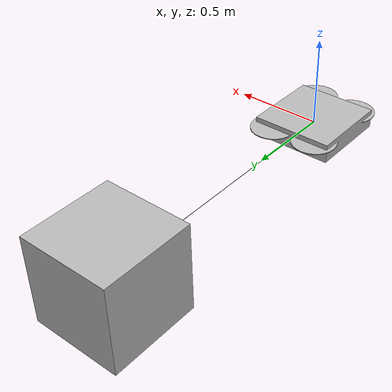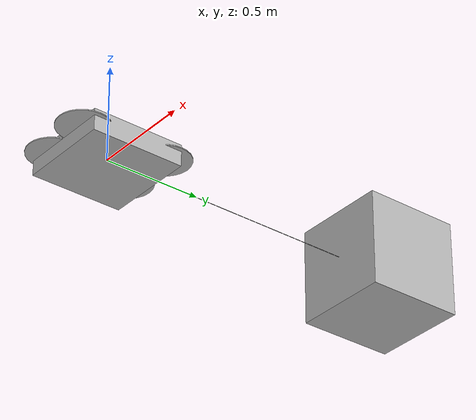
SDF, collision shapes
<!-- DO NOT EDIT: Generated from iris.sdf.jinja -->
<sdf version='1.6'>
  <model name='single_iris_payload'>

    <!-- Basic Iris Model -->
    <include>
      <uri>model://iris</uri>
    </include>

    <!-- Basic camera model -->
    <include>
      <uri>model://rpi_cam</uri>
      <pose>0 0 0 0 1.5708 0</pose>
    </include>
    <!-- Link camera to the UAV -->
    <joint name="rpi_cam_joint" type="fixed">
      <child>rpi_cam::link</child>
      <parent>iris::base_link</parent>
      <axis>
        <xyz>0 0 1</xyz>
        <limit>
          <upper>0</upper>
          <lower>0</lower>
        </limit>
      </axis>
    </joint>

    <!-- Define payload model. We are defining our own model so that we can tag it -->
    <link name='payload_link'>
      <pose> 0 1.6 0 0 0 0 </pose>
      <velocity_decay>
        <linear>0.0</linear>
        <angular>0.0</angular>
      </velocity_decay>
      <gravity>1</gravity>
      <inertial>
        <mass>0.5</mass>
        <inertia>
          <ixx>0.1</ixx>
          <ixy>0</ixy>
          <ixz>0</ixz>
          <iyy>0.1</iyy>
          <iyz>0</iyz>
          <izz>0.1</izz>
        </inertia>
      </inertial>
      <collision name='collision'>
        <pose>0 0 0 0 -0 0</pose>
        <geometry>
          <box>
            <size>0.5 0.5 0.5</size>
          </box>
        </geometry>
      </collision>
      <visual name='visual'>
        <pose>0 0 0 0 -0 0</pose>
        <geometry>
          <mesh>
            <scale>0.25 0.25 0.25</scale>
            <uri>model://iris_tagged_pld/meshes/tagged_cube_top.dae</uri>
          </mesh>
        </geometry>
      </visual>
    </link>

    <!-- Define the cable -->
    <link name='cable_link'>
      <pose>0 0.675 0 1.57 0 0</pose>
      <kinematic>0</kinematic>
      <inertial>
        <mass>1e-3</mass>
        <inertia>
          <ixx>0.0000508</ixx>
          <ixy>0</ixy>
          <ixz>0</ixz>
          <iyy>0.000023</iyy>
          <iyz>0</iyz>
          <izz>0.000023</izz>
        </inertia>
      </inertial>
      <collision name='tether_collision'>
        <pose>0 0 0 0 0 0</pose>
        <geometry>
          <cylinder>
            <radius>0.001</radius>
            <length>1.35</length>
          </cylinder>
        </geometry>
        <surface>
          <friction>
            <ode>
              <mu>0.00</mu>
              <mu2>0.00</mu2>
            </ode>
          </friction>
        </surface>
      </collision>
      <visual name='tether_visual'>
        <pose>0 0 0 0 0 0</pose>
        <geometry>
          <cylinder>
            <radius>0.005</radius>
            <length>1.35</length>
          </cylinder>
        </geometry>
        <material>
          <script>
            <name>Gazebo/Black</name>
            <uri>file://media/materials/scripts/gazebo.material</uri>
          </script>
        </material>
      </visual>
    </link>
    <joint name='cable_to_payload' type='ball'>
      <parent>payload_link</parent>
      <child>cable_link</child>
      <pose>0 0 -0.675 0 0 0</pose>
    </joint>
    <joint name='cable_to_iris' type='ball'>
      <parent>iris::base_link</parent>
      <child>cable_link</child>
      <pose>0 0 0.675 0 0 0</pose>
    </joint>

    <plugin name="p3d_payload_controller" filename="libgazebo_ros_p3d.so">
      <alwaysOn>true</alwaysOn>
      <updateRate>100.0</updateRate>
      <bodyName>payload_link</bodyName>
      <topicName>/ground_truth/payload/pose</topicName>
      <gaussianNoise>0</gaussianNoise>
      <frameName>/map</frameName>
      <xyzOffsets>0 0 0</xyzOffsets>
      <rpyOffsets>1.5708 0 0</rpyOffsets>
    </plugin>
    <plugin name="p3d_base_controller" filename="libgazebo_ros_p3d.so">
      <alwaysOn>true</alwaysOn>
      <updateRate>100.0</updateRate>
      <bodyName>iris::base_link</bodyName>
      <topicName>/ground_truth/uav/pose</topicName>
      <gaussianNoise>0</gaussianNoise>
      <frameName>/map</frameName>
      <xyzOffsets>0 0 0</xyzOffsets>
      <rpyOffsets>0 0 0</rpyOffsets>
    </plugin>
  </model>
</sdf>

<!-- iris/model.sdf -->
<!-- DO NOT EDIT: Generated from iris.sdf.jinja -->
<sdf version='1.6'>
  <model name='iris'>
    <link name='base_link'>
      <pose>0 0 0 0 0 0</pose>
      <inertial>
        <pose>0 0 0 0 0 0</pose>
        <mass>1.5</mass>
        <inertia>
          <ixx>0.029125</ixx>
          <ixy>0</ixy>
          <ixz>0</ixz>
          <iyy>0.029125</iyy>
          <iyz>0</iyz>
          <izz>0.055225</izz>
        </inertia>
      </inertial>
      <collision name='base_link_inertia_collision'>
        <pose>0 0 0 0 0 0</pose>
        <geometry>
          <box>
            <size>0.47 0.47 0.11</size>
          </box>
        </geometry>
        <surface>
          <contact>
            <ode>
              <min_depth>0.001</min_depth>
              <max_vel>0</max_vel>
            </ode>
          </contact>
          <friction>
            <ode/>
          </friction>
        </surface>
      </collision>
      <visual name='base_link_inertia_visual'>
        <pose>0 0 0 0 0 0</pose>
        <geometry>
          <mesh>
            <scale>1 1 1</scale>
            <uri>model://iris/meshes/iris.stl</uri>
          </mesh>
        </geometry>
      </visual>
      <gravity>1</gravity>
      <velocity_decay/>
    </link>
    <link name='/imu_link'>
      <pose>0 0 0 0 0 0</pose>
      <inertial>
        <pose>0 0 0 0 0 0</pose>
        <mass>0.015</mass>
        <inertia>
          <ixx>1e-05</ixx>
          <ixy>0</ixy>
          <ixz>0</ixz>
          <iyy>1e-05</iyy>
          <iyz>0</iyz>
          <izz>1e-05</izz>
        </inertia>
      </inertial>
    </link>
    <joint name='/imu_joint' type='revolute'>
      <child>/imu_link</child>
      <parent>base_link</parent>
      <axis>
        <xyz>1 0 0</xyz>
        <limit>
          <lower>0</lower>
          <upper>0</upper>
          <effort>0</effort>
          <velocity>0</velocity>
        </limit>
        <dynamics>
          <spring_reference>0</spring_reference>
          <spring_stiffness>0</spring_stiffness>
        </dynamics>
        <use_parent_model_frame>1</use_parent_model_frame>
      </axis>
    </joint>
    <link name='rotor_0'>
      <pose>0.13 -0.22 0.023 0 0 0</pose>
      <inertial>
        <pose>0 0 0 0 0 0</pose>
        <mass>0.005</mass>
        <inertia>
          <ixx>9.75e-07</ixx>
          <ixy>0</ixy>
          <ixz>0</ixz>
          <iyy>0.000273104</iyy>
          <iyz>0</iyz>
          <izz>0.000274004</izz>
        </inertia>
      </inertial>
      <collision name='rotor_0_collision'>
        <pose>0 0 0 0 0 0</pose>
        <geometry>
          <cylinder>
            <length>0.005</length>
            <radius>0.128</radius>
          </cylinder>
        </geometry>
        <surface>
          <contact>
            <ode/>
          </contact>
          <friction>
            <ode/>
          </friction>
        </surface>
      </collision>
      <visual name='rotor_0_visual'>
        <pose>0 0 0 0 0 0</pose>
        <geometry>
          <mesh>
            <scale>1 1 1</scale>
            <uri>model://iris/meshes/iris_prop_ccw.dae</uri>
          </mesh>
        </geometry>
      </visual>
      <gravity>1</gravity>
      <velocity_decay/>
    </link>
    <joint name='rotor_0_joint' type='revolute'>
      <child>rotor_0</child>
      <parent>base_link</parent>
      <axis>
        <xyz>0 0 1</xyz>
        <limit>
          <lower>-1e+16</lower>
          <upper>1e+16</upper>
        </limit>
        <dynamics>
          <spring_reference>0</spring_reference>
          <spring_stiffness>0</spring_stiffness>
        </dynamics>
        <use_parent_model_frame>1</use_parent_model_frame>
      </axis>
    </joint>
    <link name='rotor_1'>
      <pose>-0.13 0.2 0.023 0 0 0</pose>
      <inertial>
        <pose>0 0 0 0 0 0</pose>
        <mass>0.005</mass>
        <inertia>
          <ixx>9.75e-07</ixx>
          <ixy>0</ixy>
          <ixz>0</ixz>
          <iyy>0.000273104</iyy>
          <iyz>0</iyz>
          <izz>0.000274004</izz>
        </inertia>
      </inertial>
      <collision name='rotor_1_collision'>
        <pose>0 0 0 0 0 0</pose>
        <geometry>
          <cylinder>
            <length>0.005</length>
            <radius>0.128</radius>
          </cylinder>
        </geometry>
        <surface>
          <contact>
            <ode/>
          </contact>
          <friction>
            <ode/>
          </friction>
        </surface>
      </collision>
      <visual name='rotor_1_visual'>
        <pose>0 0 0 0 0 0</pose>
        <geometry>
          <mesh>
            <scale>1 1 1</scale>
            <uri>model://iris/meshes/iris_prop_ccw.dae</uri>
          </mesh>
        </geometry>
      </visual>
      <gravity>1</gravity>
      <velocity_decay/>
    </link>
    <joint name='rotor_1_joint' type='revolute'>
      <child>rotor_1</child>
      <parent>base_link</parent>
      <axis>
        <xyz>0 0 1</xyz>
        <limit>
          <lower>-1e+16</lower>
          <upper>1e+16</upper>
        </limit>
        <dynamics>
          <spring_reference>0</spring_reference>
          <spring_stiffness>0</spring_stiffness>
        </dynamics>
        <use_parent_model_frame>1</use_parent_model_frame>
      </axis>
    </joint>
    <link name='rotor_2'>
      <pose>0.13 0.22 0.023 0 0 0</pose>
      <inertial>
        <pose>0 0 0 0 0 0</pose>
        <mass>0.005</mass>
        <inertia>
          <ixx>9.75e-07</ixx>
          <ixy>0</ixy>
          <ixz>0</ixz>
          <iyy>0.000273104</iyy>
          <iyz>0</iyz>
          <izz>0.000274004</izz>
        </inertia>
      </inertial>
      <collision name='rotor_2_collision'>
        <pose>0 0 0 0 0 0</pose>
        <geometry>
          <cylinder>
            <length>0.005</length>
            <radius>0.128</radius>
          </cylinder>
        </geometry>
        <surface>
          <contact>
            <ode/>
          </contact>
          <friction>
            <ode/>
          </friction>
        </surface>
      </collision>
      <visual name='rotor_2_visual'>
        <pose>0 0 0 0 0 0</pose>
        <geometry>
          <mesh>
            <scale>1 1 1</scale>
            <uri>model://iris/meshes/iris_prop_cw.dae</uri>
          </mesh>
        </geometry>
      </visual>
      <gravity>1</gravity>
      <velocity_decay/>
    </link>
    <joint name='rotor_2_joint' type='revolute'>
      <child>rotor_2</child>
      <parent>base_link</parent>
      <axis>
        <xyz>0 0 1</xyz>
        <limit>
          <lower>-1e+16</lower>
          <upper>1e+16</upper>
        </limit>
        <dynamics>
          <spring_reference>0</spring_reference>
          <spring_stiffness>0</spring_stiffness>
        </dynamics>
        <use_parent_model_frame>1</use_parent_model_frame>
      </axis>
    </joint>
    <link name='rotor_3'>
      <pose>-0.13 -0.2 0.023 0 0 0</pose>
      <inertial>
        <pose>0 0 0 0 0 0</pose>
        <mass>0.005</mass>
        <inertia>
          <ixx>9.75e-07</ixx>
          <ixy>0</ixy>
          <ixz>0</ixz>
          <iyy>0.000273104</iyy>
          <iyz>0</iyz>
          <izz>0.000274004</izz>
        </inertia>
      </inertial>
      <collision name='rotor_3_collision'>
        <pose>0 0 0 0 0 0</pose>
        <geometry>
          <cylinder>
            <length>0.005</length>
            <radius>0.128</radius>
          </cylinder>
        </geometry>
        <surface>
          <contact>
            <ode/>
          </contact>
          <friction>
            <ode/>
          </friction>
        </surface>
      </collision>
      <visual name='rotor_3_visual'>
        <pose>0 0 0 0 0 0</pose>
        <geometry>
          <mesh>
            <scale>1 1 1</scale>
            <uri>model://iris/meshes/iris_prop_cw.dae</uri>
          </mesh>
        </geometry>
      </visual>
      <gravity>1</gravity>
      <velocity_decay/>
    </link>
    <joint name='rotor_3_joint' type='revolute'>
      <child>rotor_3</child>
      <parent>base_link</parent>
      <axis>
        <xyz>0 0 1</xyz>
        <limit>
          <lower>-1e+16</lower>
          <upper>1e+16</upper>
        </limit>
        <dynamics>
          <spring_reference>0</spring_reference>
          <spring_stiffness>0</spring_stiffness>
        </dynamics>
        <use_parent_model_frame>1</use_parent_model_frame>
      </axis>
    </joint>
    <plugin name='rosbag' filename='libgazebo_multirotor_base_plugin.so'>
      <robotNamespace/>
      <linkName>base_link</linkName>
      <rotorVelocitySlowdownSim>10</rotorVelocitySlowdownSim>
    </plugin>
    <plugin name='front_right_motor_model' filename='libgazebo_motor_model.so'>
      <robotNamespace/>
      <jointName>rotor_0_joint</jointName>
      <linkName>rotor_0</linkName>
      <turningDirection>ccw</turningDirection>
      <timeConstantUp>0.0125</timeConstantUp>
      <timeConstantDown>0.025</timeConstantDown>
      <maxRotVelocity>1100</maxRotVelocity>
      <motorConstant>5.84e-06</motorConstant>
      <momentConstant>0.06</momentConstant>
      <commandSubTopic>/gazebo/command/motor_speed</commandSubTopic>
      <motorNumber>0</motorNumber>
      <rotorDragCoefficient>0.000175</rotorDragCoefficient>
      <rollingMomentCoefficient>1e-06</rollingMomentCoefficient>
      <motorSpeedPubTopic>/motor_speed/0</motorSpeedPubTopic>
      <rotorVelocitySlowdownSim>10</rotorVelocitySlowdownSim>
    </plugin>
    <plugin name='back_left_motor_model' filename='libgazebo_motor_model.so'>
      <robotNamespace/>
      <jointName>rotor_1_joint</jointName>
      <linkName>rotor_1</linkName>
      <turningDirection>ccw</turningDirection>
      <timeConstantUp>0.0125</timeConstantUp>
      <timeConstantDown>0.025</timeConstantDown>
      <maxRotVelocity>1100</maxRotVelocity>
      <motorConstant>5.84e-06</motorConstant>
      <momentConstant>0.06</momentConstant>
      <commandSubTopic>/gazebo/command/motor_speed</commandSubTopic>
      <motorNumber>1</motorNumber>
      <rotorDragCoefficient>0.000175</rotorDragCoefficient>
      <rollingMomentCoefficient>1e-06</rollingMomentCoefficient>
      <motorSpeedPubTopic>/motor_speed/1</motorSpeedPubTopic>
      <rotorVelocitySlowdownSim>10</rotorVelocitySlowdownSim>
    </plugin>
    <plugin name='front_left_motor_model' filename='libgazebo_motor_model.so'>
      <robotNamespace/>
      <jointName>rotor_2_joint</jointName>
      <linkName>rotor_2</linkName>
      <turningDirection>cw</turningDirection>
      <timeConstantUp>0.0125</timeConstantUp>
      <timeConstantDown>0.025</timeConstantDown>
      <maxRotVelocity>1100</maxRotVelocity>
      <motorConstant>5.84e-06</motorConstant>
      <momentConstant>0.06</momentConstant>
      <commandSubTopic>/gazebo/command/motor_speed</commandSubTopic>
      <motorNumber>2</motorNumber>
      <rotorDragCoefficient>0.000175</rotorDragCoefficient>
      <rollingMomentCoefficient>1e-06</rollingMomentCoefficient>
      <motorSpeedPubTopic>/motor_speed/2</motorSpeedPubTopic>
      <rotorVelocitySlowdownSim>10</rotorVelocitySlowdownSim>
    </plugin>
    <plugin name='back_right_motor_model' filename='libgazebo_motor_model.so'>
      <robotNamespace/>
      <jointName>rotor_3_joint</jointName>
      <linkName>rotor_3</linkName>
      <turningDirection>cw</turningDirection>
      <timeConstantUp>0.0125</timeConstantUp>
      <timeConstantDown>0.025</timeConstantDown>
      <maxRotVelocity>1100</maxRotVelocity>
      <motorConstant>5.84e-06</motorConstant>
      <momentConstant>0.06</momentConstant>
      <commandSubTopic>/gazebo/command/motor_speed</commandSubTopic>
      <motorNumber>3</motorNumber>
      <rotorDragCoefficient>0.000175</rotorDragCoefficient>
      <rollingMomentCoefficient>1e-06</rollingMomentCoefficient>
      <motorSpeedPubTopic>/motor_speed/3</motorSpeedPubTopic>
      <rotorVelocitySlowdownSim>10</rotorVelocitySlowdownSim>
    </plugin>
    <model name='gps0'>
      <link name='link'>
        <pose>0 0 0 0 0 0</pose>
        <inertial>
          <pose>0 0 0 0 0 0</pose>
          <mass>0.01</mass>
          <inertia>
            <ixx>2.1733e-06</ixx>
            <ixy>0</ixy>
            <ixz>0</ixz>
            <iyy>2.1733e-06</iyy>
            <iyz>0</iyz>
            <izz>1.8e-07</izz>
          </inertia>
        </inertial>
        <visual name='visual'>
          <geometry>
            <cylinder>
              <radius>0.01</radius>
              <length>0.002</length>
            </cylinder>
          </geometry>
        </visual>
        <sensor name='gps' type='gps'>
          <pose>0 0 0 0 0 0</pose>
          <plugin name='gps_plugin' filename='libgazebo_gps_plugin.so'>
            <robotNamespace/>
            <gpsNoise>1</gpsNoise>
            <gpsXYRandomWalk>2.0</gpsXYRandomWalk>
            <gpsZRandomWalk>4.0</gpsZRandomWalk>
            <gpsXYNoiseDensity>0.0002</gpsXYNoiseDensity>
            <gpsZNoiseDensity>0.0004</gpsZNoiseDensity>
            <gpsVXYNoiseDensity>0.2</gpsVXYNoiseDensity>
            <gpsVZNoiseDensity>0.4</gpsVZNoiseDensity>
          </plugin>
        </sensor>
      </link>
    </model>
    <joint name='gps0_joint' type='fixed'>
      <parent>base_link</parent>
      <child>gps0::link</child>
    </joint>
    <plugin name='groundtruth_plugin' filename='libgazebo_groundtruth_plugin.so'>
      <robotNamespace/>
    </plugin>
    <plugin name='magnetometer_plugin' filename='libgazebo_magnetometer_plugin.so'>
      <robotNamespace/>
      <pubRate>100</pubRate>
      <noiseDensity>0.0004</noiseDensity>
      <randomWalk>6.4e-06</randomWalk>
      <biasCorrelationTime>600</biasCorrelationTime>
      <magTopic>/mag</magTopic>
    </plugin>
    <plugin name='barometer_plugin' filename='libgazebo_barometer_plugin.so'>
      <robotNamespace/>
      <pubRate>50</pubRate>
      <baroTopic>/baro</baroTopic>
      <baroDriftPaPerSec>0</baroDriftPaPerSec>
    </plugin>
    <plugin name='mavlink_interface' filename='libgazebo_mavlink_interface.so'>
      <robotNamespace/>
      <imuSubTopic>/imu</imuSubTopic>
      <magSubTopic>/mag</magSubTopic>
      <baroSubTopic>/baro</baroSubTopic>
      <mavlink_addr>INADDR_ANY</mavlink_addr>
      <mavlink_tcp_port>{{ mavlink_tcp_port }}</mavlink_tcp_port>
      <mavlink_udp_port>{{ mavlink_udp_port }}</mavlink_udp_port>
      <serialEnabled>{{ serial_enabled }}</serialEnabled>
      <serialDevice>{{ serial_device }}</serialDevice>
      <baudRate>{{ serial_baudrate }}</baudRate>
      <qgc_addr>INADDR_ANY</qgc_addr>
      <qgc_udp_port>14550</qgc_udp_port>
      <sdk_addr>INADDR_ANY</sdk_addr>
      <sdk_udp_port>14540</sdk_udp_port>
      <hil_mode>{{ hil_mode }}</hil_mode>
      <hil_state_level>0</hil_state_level>
      <send_vision_estimation>0</send_vision_estimation>
      <send_odometry>1</send_odometry>
      <enable_lockstep>1</enable_lockstep>
      <use_tcp>1</use_tcp>
      <motorSpeedCommandPubTopic>/gazebo/command/motor_speed</motorSpeedCommandPubTopic>
      <control_channels>
        <channel name='rotor1'>
          <input_index>0</input_index>
          <input_offset>0</input_offset>
          <input_scaling>1000</input_scaling>
          <zero_position_disarmed>0</zero_position_disarmed>
          <zero_position_armed>100</zero_position_armed>
          <joint_control_type>velocity</joint_control_type>
        </channel>
        <channel name='rotor2'>
          <input_index>1</input_index>
          <input_offset>0</input_offset>
          <input_scaling>1000</input_scaling>
          <zero_position_disarmed>0</zero_position_disarmed>
          <zero_position_armed>100</zero_position_armed>
          <joint_control_type>velocity</joint_control_type>
        </channel>
        <channel name='rotor3'>
          <input_index>2</input_index>
          <input_offset>0</input_offset>
          <input_scaling>1000</input_scaling>
          <zero_position_disarmed>0</zero_position_disarmed>
          <zero_position_armed>100</zero_position_armed>
          <joint_control_type>velocity</joint_control_type>
        </channel>
        <channel name='rotor4'>
          <input_index>3</input_index>
          <input_offset>0</input_offset>
          <input_scaling>1000</input_scaling>
          <zero_position_disarmed>0</zero_position_disarmed>
          <zero_position_armed>100</zero_position_armed>
          <joint_control_type>velocity</joint_control_type>
        </channel>
        <channel name='rotor5'>
          <input_index>4</input_index>
          <input_offset>1</input_offset>
          <input_scaling>324.6</input_scaling>
          <zero_position_disarmed>0</zero_position_disarmed>
          <zero_position_armed>0</zero_position_armed>
          <joint_control_type>velocity</joint_control_type>
          <joint_control_pid>
            <p>0.1</p>
            <i>0</i>
            <d>0</d>
            <iMax>0.0</iMax>
            <iMin>0.0</iMin>
            <cmdMax>2</cmdMax>
            <cmdMin>-2</cmdMin>
          </joint_control_pid>
          <joint_name>zephyr_delta_wing::propeller_joint</joint_name>
        </channel>
        <channel name='rotor6'>
          <input_index>5</input_index>
          <input_offset>0</input_offset>
          <input_scaling>0.524</input_scaling>
          <zero_position_disarmed>0</zero_position_disarmed>
          <zero_position_armed>0</zero_position_armed>
          <joint_control_type>position</joint_control_type>
          <joint_name>zephyr_delta_wing::flap_left_joint</joint_name>
          <joint_control_pid>
            <p>10.0</p>
            <i>0</i>
            <d>0</d>
            <iMax>0</iMax>
            <iMin>0</iMin>
            <cmdMax>20</cmdMax>
            <cmdMin>-20</cmdMin>
          </joint_control_pid>
        </channel>
        <channel name='rotor7'>
          <input_index>6</input_index>
          <input_offset>0</input_offset>
          <input_scaling>0.524</input_scaling>
          <zero_position_disarmed>0</zero_position_disarmed>
          <zero_position_armed>0</zero_position_armed>
          <joint_control_type>position</joint_control_type>
          <joint_name>zephyr_delta_wing::flap_right_joint</joint_name>
          <joint_control_pid>
            <p>10.0</p>
            <i>0</i>
            <d>0</d>
            <iMax>0</iMax>
            <iMin>0</iMin>
            <cmdMax>20</cmdMax>
            <cmdMin>-20</cmdMin>
          </joint_control_pid>
        </channel>
        <channel name='rotor8'>
          <input_index>7</input_index>
          <input_offset>0</input_offset>
          <input_scaling>0.524</input_scaling>
          <zero_position_disarmed>0</zero_position_disarmed>
          <zero_position_armed>0</zero_position_armed>
          <joint_control_type>position</joint_control_type>
        </channel>
      </control_channels>
    </plugin>
    <static>0</static>
    <plugin name='rotors_gazebo_imu_plugin' filename='libgazebo_imu_plugin.so'>
      <robotNamespace/>
      <linkName>/imu_link</linkName>
      <imuTopic>/imu</imuTopic>
      <gyroscopeNoiseDensity>0.00018665</gyroscopeNoiseDensity>
      <gyroscopeRandomWalk>3.8785e-05</gyroscopeRandomWalk>
      <gyroscopeBiasCorrelationTime>1000.0</gyroscopeBiasCorrelationTime>
      <gyroscopeTurnOnBiasSigma>0.0087</gyroscopeTurnOnBiasSigma>
      <accelerometerNoiseDensity>0.00186</accelerometerNoiseDensity>
      <accelerometerRandomWalk>0.006</accelerometerRandomWalk>
      <accelerometerBiasCorrelationTime>300.0</accelerometerBiasCorrelationTime>
      <accelerometerTurnOnBiasSigma>0.196</accelerometerTurnOnBiasSigma>
    </plugin>
  </model>
</sdf>

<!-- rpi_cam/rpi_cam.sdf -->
<sdf version='1.6'>
  <model name='rpi_cam'>
    <pose>-0.158979 -0.04405 0.045074 0 -0 0</pose>
    <link name='link'>
      <inertial>
        <mass>0.015</mass>
        <inertia>
          <ixx>4.15e-6</ixx>
          <ixy>0</ixy>
          <ixz>0</ixz>
          <iyy>2.407e-6</iyy>
          <iyz>0</iyz>
          <izz>2.407e-6</izz>
        </inertia>
      </inertial>
      <collision name='collision'>
        <geometry>
          <box>
            <size>0.01 0.01 0.01</size>
          </box>
        </geometry>
        <max_contacts>10</max_contacts>
        <surface>
          <contact>
            <ode/>
          </contact>
          <bounce/>
          <friction>
            <ode/>
          </friction>
        </surface>
      </collision>
      <visual name='visual'>
        <geometry>
          <box>
            <size>0.01 0.01 0.01</size>
          </box>
        </geometry>
      </visual>
      <sensor name='camera' type='camera'>
        <camera name='__default__'>
          <horizontal_fov>2.0</horizontal_fov>
          <image>
            <width>1280</width>
            <height>720</height>
          </image>
          <clip>
            <near>0.1</near>
            <far>100</far>
          </clip>
          <lens>
            <type>custom</type>
            <custom_function>
              <c1>1.05</c1>
              <c2>4</c2>
              <f>1</f>
              <fun>tan</fun>
            </custom_function>
            <scale_to_hfov>1</scale_to_hfov>
            <cutoff_angle>3.1415</cutoff_angle>
            <env_texture_size>1080</env_texture_size>
          </lens>
        </camera>
        <always_on>1</always_on>
        <update_rate>30</update_rate>
        <visualize>1</visualize>
        <plugin name='camera_plugin' filename='libgazebo_ros_camera.so'>
          <robotNamespace></robotNamespace>
          <alwaysOn>true</alwaysOn>
          <imageTopicName>image_raw</imageTopicName>
          <cameraInfoTopicName>camera_info</cameraInfoTopicName>
          <updateRate>30.0</updateRate>
          <cameraName>usb_cam</cameraName>
          <frameName>/robot_camera_link</frameName>
          <CxPrime>1280.5</CxPrime>
          <Cx>1280.5</Cx>
          <Cy>720.5</Cy>
          <hackBaseline>0</hackBaseline>
          <focalLength>277.191356</focalLength>
          <distortionK1>0.0</distortionK1>
          <distortionK2>0.0</distortionK2>
          <distortionK3>0.0</distortionK3>
          <distortionT1>0.0</distortionT1>
          <distortionT2>0.0</distortionT2>
        </plugin>
      </sensor>
      <self_collide>0</self_collide>
      <kinematic>0</kinematic>
    </link>
  </model>
</sdf>
